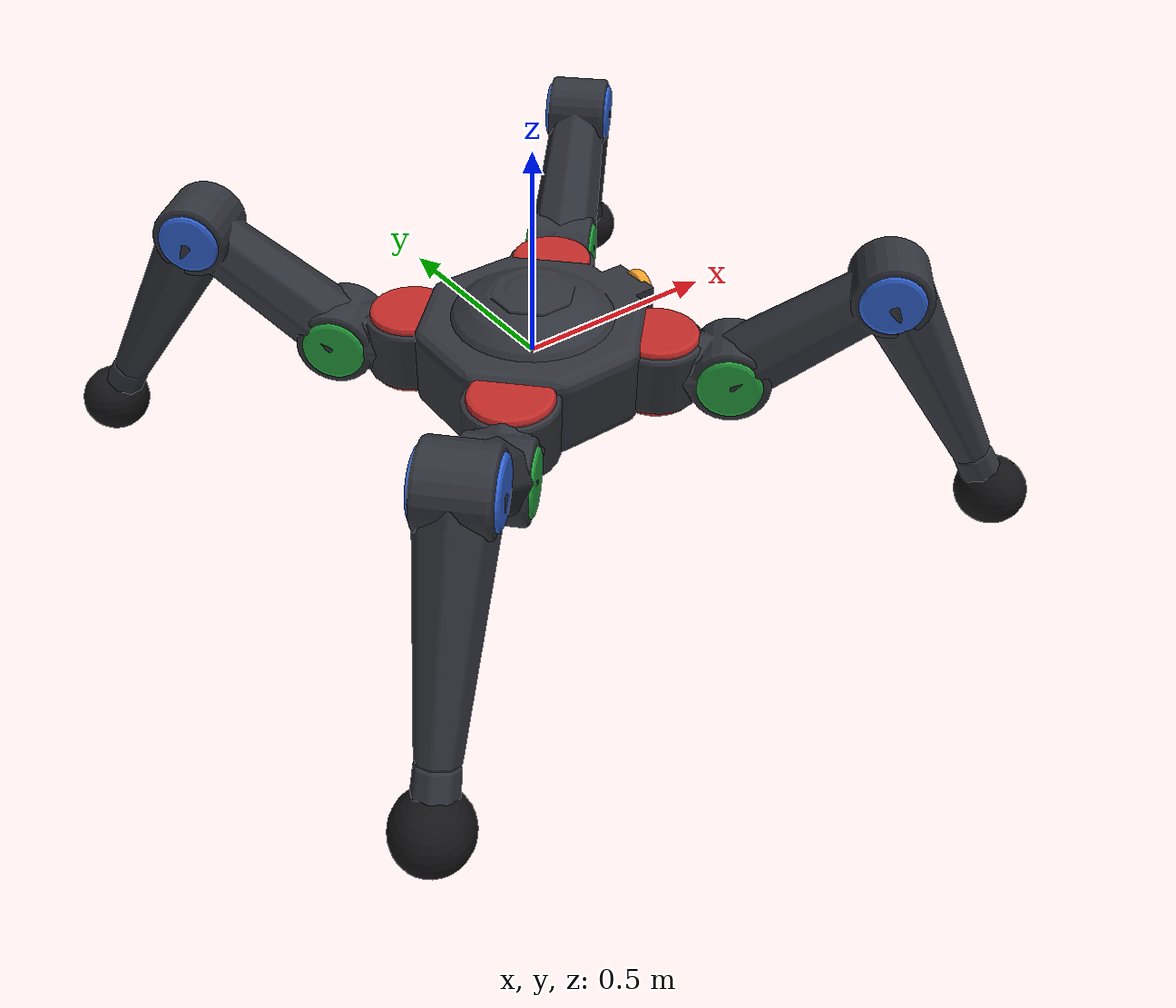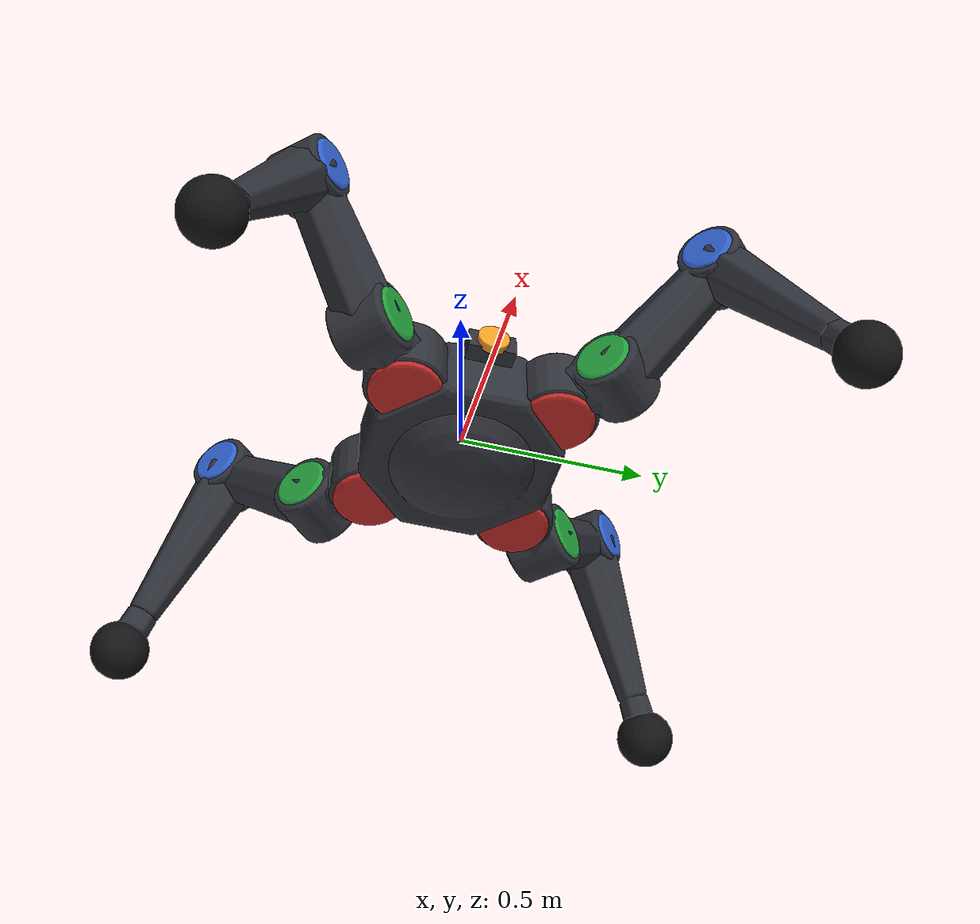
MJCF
<mujoco model="spyder12_isaac">

  <compiler angle="degree" coordinate="local" inertiafromgeom="true" meshdir="../.." />
  <option integrator="RK4" timestep="0.01" />

  <default>

    <joint armature="1" damping="0" stiffness="0" limited="true" />

    <geom condim="3" density="5.0" friction="1 0.5 0.5" margin="0.01" rgba="0.55 0.55 0.58 1" group="3" />

    <motor ctrllimited="true" ctrlrange="-1 1" gear="40" />
    <default class="visual">

      <geom type="mesh" contype="0" conaffinity="0" density="0" group="2" rgba="0.5 0.5 0.5 1" />
    </default>
  </default>

  <asset>
    <mesh name="carapace_shell" file="meshes/carapace_shell.obj" />
    <mesh name="carapace_lens" file="meshes/carapace_lens.obj" />
    <mesh name="coxa_shell" file="meshes/coxa_shell.obj" />
    <mesh name="coxa_hub" file="meshes/coxa_hub.obj" />
    <mesh name="femur_shell" file="meshes/femur_shell.obj" />
    <mesh name="femur_hub" file="meshes/femur_hub.obj" />
    <mesh name="tibia_shell" file="meshes/tibia_shell.obj" />
    <mesh name="tibia_hub" file="meshes/tibia_hub.obj" />
    <mesh name="tibia_pad" file="meshes/tibia_pad.obj" />

    <material name="MatShell" rgba="0.19 0.20 0.23 1" specular="0.6" shininess="0.55" reflectance="0.12" />
    <material name="MatHip" rgba="0.76 0.17 0.16 1" specular="0.5" shininess="0.40" />
    <material name="MatLift" rgba="0.15 0.65 0.25 1" specular="0.5" shininess="0.40" />
    <material name="MatKnee" rgba="0.20 0.40 0.85 1" specular="0.5" shininess="0.40" />
    <material name="MatPad" rgba="0.08 0.08 0.09 1" specular="0.1" shininess="0.10" />
    <material name="MatLens" rgba="0.95 0.62 0.15 1" specular="0.9" shininess="0.90" emission="0.35" />
  </asset>

  <worldbody>
    <body name="torso" pos="0 0 0">

      <joint armature="0" damping="0" stiffness="0" limited="false" margin="0.01" name="root" pos="0 0 0" type="free" />

      <geom class="visual" mesh="carapace_shell" material="MatShell" />
      <geom class="visual" mesh="carapace_lens" material="MatLens" />

      <geom name="torso_geom" pos="0 0 0" size="0.25" type="sphere" rgba="0.28 0.28 0.32 1" />

      <geom name="stub_1" fromto="0 0 0  0.2  0.2 0" size="0.08" type="capsule" />
      <geom name="stub_2" fromto="0 0 0 -0.2  0.2 0" size="0.08" type="capsule" />
      <geom name="stub_3" fromto="0 0 0 -0.2 -0.2 0" size="0.08" type="capsule" />
      <geom name="stub_4" fromto="0 0 0  0.2 -0.2 0" size="0.08" type="capsule" />

      <body name="coxa_1" pos="0.2 0.2 0">
        <joint name="hip_1" type="hinge" axis="0 0 1" pos="0 0 0" range="-40 40" />

        <geom class="visual" mesh="coxa_shell" material="MatShell" quat="0.92387953 0 0 0.38268343" />
        <geom class="visual" mesh="coxa_hub" material="MatHip" quat="0.92387953 0 0 0.38268343" />
        <geom name="coxa_1_geom" fromto="0 0 0 0.12 0.12 0" size="0.08" type="capsule" />
        <body name="femur_1" pos="0.12 0.12 0">
          <joint name="lift_1" type="hinge" axis="-1 1 0" pos="0 0 0" range="-60 60" />
          <geom class="visual" mesh="femur_shell" material="MatShell" quat="0.92387953 0 0 0.38268343" />
          <geom class="visual" mesh="femur_hub" material="MatLift" quat="0.92387953 0 0 0.38268343" />
          <geom name="femur_1_geom" fromto="0 0 0 0.22 0.22 0.25" size="0.08" type="capsule" />
          <body name="tibia_1" pos="0.22 0.22 0.25">
            <joint name="knee_1" type="hinge" axis="-1 1 0" pos="0 0 0" range="-50 50" />
            <geom class="visual" mesh="tibia_shell" material="MatShell" quat="0.92387953 0 0 0.38268343" />
            <geom class="visual" mesh="tibia_hub" material="MatKnee" quat="0.92387953 0 0 0.38268343" />
            <geom class="visual" mesh="tibia_pad" material="MatPad" quat="0.92387953 0 0 0.38268343" />
            <geom name="tibia_1_geom" fromto="0 0 0 0.22 0.22 -0.52" size="0.08" type="capsule" />
          </body>
        </body>
      </body>

      <body name="coxa_2" pos="-0.2 0.2 0">
        <joint name="hip_2" type="hinge" axis="0 0 1" pos="0 0 0" range="-40 40" />

        <geom class="visual" mesh="coxa_shell" material="MatShell" quat="0.38268343 0 0 0.92387953" />
        <geom class="visual" mesh="coxa_hub" material="MatHip" quat="0.38268343 0 0 0.92387953" />
        <geom name="coxa_2_geom" fromto="0 0 0 -0.12 0.12 0" size="0.08" type="capsule" />
        <body name="femur_2" pos="-0.12 0.12 0">
          <joint name="lift_2" type="hinge" axis="1 1 0" pos="0 0 0" range="-60 60" />
          <geom class="visual" mesh="femur_shell" material="MatShell" quat="0.38268343 0 0 0.92387953" />
          <geom class="visual" mesh="femur_hub" material="MatLift" quat="0.38268343 0 0 0.92387953" />
          <geom name="femur_2_geom" fromto="0 0 0 -0.22 0.22 0.25" size="0.08" type="capsule" />
          <body name="tibia_2" pos="-0.22 0.22 0.25">
            <joint name="knee_2" type="hinge" axis="1 1 0" pos="0 0 0" range="-50 50" />
            <geom class="visual" mesh="tibia_shell" material="MatShell" quat="0.38268343 0 0 0.92387953" />
            <geom class="visual" mesh="tibia_hub" material="MatKnee" quat="0.38268343 0 0 0.92387953" />
            <geom class="visual" mesh="tibia_pad" material="MatPad" quat="0.38268343 0 0 0.92387953" />
            <geom name="tibia_2_geom" fromto="0 0 0 -0.22 0.22 -0.52" size="0.08" type="capsule" />
          </body>
        </body>
      </body>

      <body name="coxa_3" pos="-0.2 -0.2 0">
        <joint name="hip_3" type="hinge" axis="0 0 1" pos="0 0 0" range="-40 40" />

        <geom class="visual" mesh="coxa_shell" material="MatShell" quat="0.38268343 0 0 -0.92387953" />
        <geom class="visual" mesh="coxa_hub" material="MatHip" quat="0.38268343 0 0 -0.92387953" />
        <geom name="coxa_3_geom" fromto="0 0 0 -0.12 -0.12 0" size="0.08" type="capsule" />
        <body name="femur_3" pos="-0.12 -0.12 0">
          <joint name="lift_3" type="hinge" axis="-1 1 0" pos="0 0 0" range="-60 60" />
          <geom class="visual" mesh="femur_shell" material="MatShell" quat="0.38268343 0 0 -0.92387953" />
          <geom class="visual" mesh="femur_hub" material="MatLift" quat="0.38268343 0 0 -0.92387953" />
          <geom name="femur_3_geom" fromto="0 0 0 -0.22 -0.22 0.25" size="0.08" type="capsule" />
          <body name="tibia_3" pos="-0.22 -0.22 0.25">
            <joint name="knee_3" type="hinge" axis="-1 1 0" pos="0 0 0" range="-50 50" />
            <geom class="visual" mesh="tibia_shell" material="MatShell" quat="0.38268343 0 0 -0.92387953" />
            <geom class="visual" mesh="tibia_hub" material="MatKnee" quat="0.38268343 0 0 -0.92387953" />
            <geom class="visual" mesh="tibia_pad" material="MatPad" quat="0.38268343 0 0 -0.92387953" />
            <geom name="tibia_3_geom" fromto="0 0 0 -0.22 -0.22 -0.52" size="0.08" type="capsule" />
          </body>
        </body>
      </body>

      <body name="coxa_4" pos="0.2 -0.2 0">
        <joint name="hip_4" type="hinge" axis="0 0 1" pos="0 0 0" range="-40 40" />

        <geom class="visual" mesh="coxa_shell" material="MatShell" quat="0.92387953 0 0 -0.38268343" />
        <geom class="visual" mesh="coxa_hub" material="MatHip" quat="0.92387953 0 0 -0.38268343" />
        <geom name="coxa_4_geom" fromto="0 0 0 0.12 -0.12 0" size="0.08" type="capsule" />
        <body name="femur_4" pos="0.12 -0.12 0">
          <joint name="lift_4" type="hinge" axis="1 1 0" pos="0 0 0" range="-60 60" />
          <geom class="visual" mesh="femur_shell" material="MatShell" quat="0.92387953 0 0 -0.38268343" />
          <geom class="visual" mesh="femur_hub" material="MatLift" quat="0.92387953 0 0 -0.38268343" />
          <geom name="femur_4_geom" fromto="0 0 0 0.22 -0.22 0.25" size="0.08" type="capsule" />
          <body name="tibia_4" pos="0.22 -0.22 0.25">
            <joint name="knee_4" type="hinge" axis="1 1 0" pos="0 0 0" range="-50 50" />
            <geom class="visual" mesh="tibia_shell" material="MatShell" quat="0.92387953 0 0 -0.38268343" />
            <geom class="visual" mesh="tibia_hub" material="MatKnee" quat="0.92387953 0 0 -0.38268343" />
            <geom class="visual" mesh="tibia_pad" material="MatPad" quat="0.92387953 0 0 -0.38268343" />
            <geom name="tibia_4_geom" fromto="0 0 0 0.22 -0.22 -0.52" size="0.08" type="capsule" />
          </body>
        </body>
      </body>
    </body>
  </worldbody>

  </mujoco>
